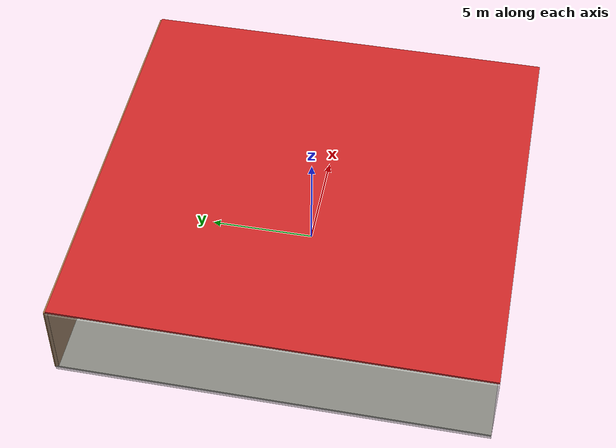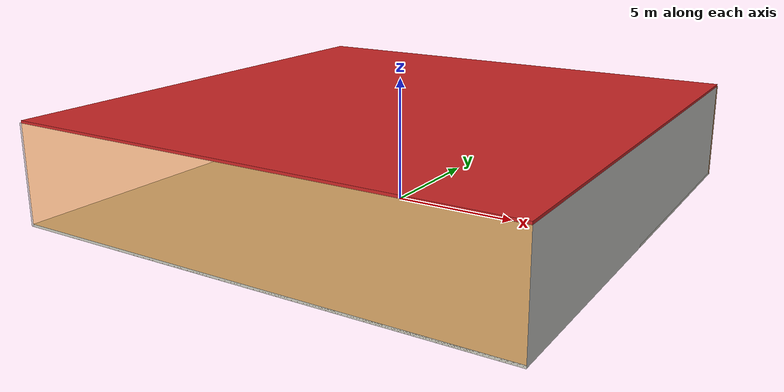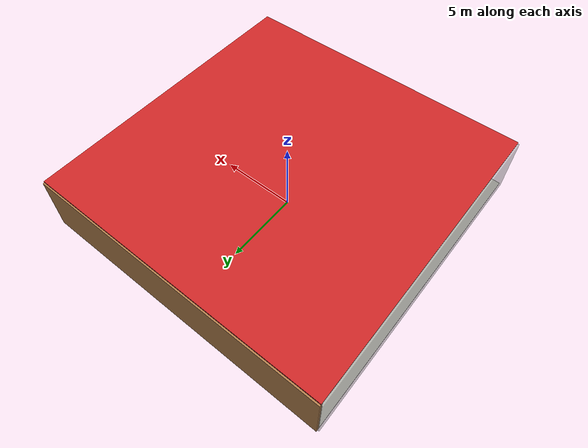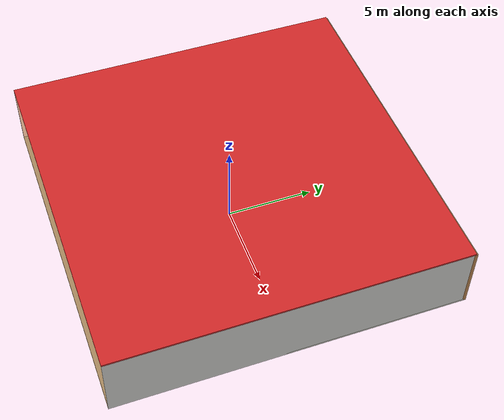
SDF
<sdf version="1.4">
 <world name="default">
  <physics type="ode">
   <max_step_size>0.001</max_step_size>
   <real_time_factor>1</real_time_factor>
   <real_time_update_rate>1000</real_time_update_rate>
   <gravity>0 0 -9.8</gravity>
  </physics>
  <scene><ambient>0.4 0.4 0.4 1</ambient><background>0.7 0.7 0.7 1</background><shadows>1</shadows></scene>
  <model name="Surrounding">
   <static>1</static>
   <link name="Ceiling">
    <collision name="Ceiling_Collision"><geometry><box><size>20 20 0.1</size></box></geometry></collision>
    <visual name="Ceiling_Visual">
     <geometry><box><size>20 20 0.1</size></box></geometry>
     <material>
      <script><uri>file://media/materials/scripts/gazebo.material</uri><name>Gazebo/Red</name></script>
     </material>
    </visual>
    <pose>0 0 4.05 0 0 0</pose>
   </link>
   <link name="Wall_South">
    <collision name="Wall_South_Collision">
     <geometry><box><size>20 0 4</size></box></geometry>
     <pose>0 0 2 0 -0 0</pose>
    </collision>
    <visual name="Wall_South_Visual">
     <pose>0 0 2 0 -0 0</pose>
     <geometry><box><size>20 0 4</size></box></geometry>
     <material>
      <script>
       <uri>file://media/materials/scripts/gazebo.material</uri>
       <name>Gazebo/OrangeTransparent</name>
      </script>
     </material>
    </visual>
    <velocity_decay><linear>0</linear><angular>0</angular></velocity_decay>
    <pose>0 -10 0 0 -0 0</pose>
   </link>
   <link name="Wall_East">
    <collision name="Wall_21_Collision">
     <geometry><box><size>20 0 4</size></box></geometry>
     <pose>0 0 2 0 -0 0</pose>
    </collision>
    <visual name="Wall_21_Visual">
     <pose>0 0 2 0 -0 0</pose>
     <geometry><box><size>20 0 4</size></box></geometry>
     <material>
      <script><uri>file://media/materials/scripts/gazebo.material</uri><name>Gazebo/CeilingTiled</name></script>
     </material>
    </visual>
    <velocity_decay><linear>0</linear><angular>0</angular></velocity_decay>
    <pose>10 0 0 0 -0 1.5708</pose>
   </link>
   <link name="Wall_North">
    <collision name="Wall_22_Collision">
     <geometry><box><size>20 0.2 4</size></box></geometry>
     <pose>0 0 2 0 -0 0</pose>
    </collision>
    <visual name="Wall_22_Visual">
     <pose>0 0 2 0 -0 0</pose>
     <geometry><box><size>20 0.2 4</size></box></geometry>
     <material>
      <script><uri>file://media/materials/scripts/gazebo.material</uri><name>Gazebo/WoodFloor</name></script>
     </material>
    </visual>
    <velocity_decay><linear>0</linear><angular>0</angular></velocity_decay>
    <pose>0 10 0 0 -0 0</pose>
   </link>
   <link name="Wall_West">
    <collision name="Wall_23_Collision">
     <geometry><box><size>20 0.2 4</size></box></geometry>
     <pose>0 0 2 0 -0 0</pose>
    </collision>
    <visual name="Wall_23_Visual">
     <pose>0 0 2 0 -0 0</pose>
     <geometry><box><size>20 0.2 4</size></box></geometry>
     <material>
      <script><uri>file://media/materials/scripts/gazebo.material</uri><name>Gazebo/GreyTransparent</name></script>
     </material>
    </visual>
    <velocity_decay><linear>0</linear><angular>0</angular></velocity_decay>
    <pose>-10 0 0 0 0 -1.5708</pose>
   </link>
   <link name="Ground_link">
    <collision name="collision">
     <pose>0 0 .05 0 -0 0</pose>
     <geometry><box><size>20 20 0.1</size></box></geometry>
    </collision>
    <visual name="visual">
     <pose>0 0 .05 0 -0 0</pose>
     <geometry><box><size>20 20 0.1</size></box></geometry>
     <material>
      <script><uri>file://media/materials/scripts/gazebo.material</uri><name>Gazebo/PaintedWall</name></script>
     </material>
    </visual>
   </link>
   <static>1</static>
  </model>
  <spherical_coordinates>
   <surface_model>EARTH_WGS84</surface_model>
   <latitude_deg>0</latitude_deg>
   <longitude_deg>0</longitude_deg>
   <elevation>0</elevation>
   <heading_deg>0</heading_deg>
  </spherical_coordinates>
  <light name="lightball_0" type="diffuse">
   <diffuse>0.8 0.8 0.8 1</diffuse>
   <specular>0.2 0.2 0.2 1</specular>
   <attenuation>
    <range>100</range>
    <constant>0.7</constant>
    <linear>0.01</linear>
    <quadratic>0.001</quadratic>
   </attenuation>
   <direction>-0.5 0.1 -0.9</direction>
   <pose>-0.928702332087 -0.66718600412 0.785485216547 0 0 0</pose>
  </light>
  <light name="lightball_1" type="diffuse">
   <diffuse>0.8 0.8 0.8 1</diffuse>
   <specular>0.2 0.2 0.2 1</specular>
   <attenuation>
    <range>100</range>
    <constant>0.7</constant>
    <linear>0.01</linear>
    <quadratic>0.001</quadratic>
   </attenuation>
   <direction>-0.5 0.1 -0.9</direction>
   <pose>1.39361688313 -3.70500204905 3.09729109374 0 0 0</pose>
  </light>
  <light name="lightball_2" type="diffuse">
   <diffuse>0.8 0.8 0.8 1</diffuse>
   <specular>0.2 0.2 0.2 1</specular>
   <attenuation>
    <range>100</range>
    <constant>0.7</constant>
    <linear>0.01</linear>
    <quadratic>0.001</quadratic>
   </attenuation>
   <direction>-0.5 0.1 -0.9</direction>
   <pose>-6.57329357052 4.55098685815 1.1972615632 0 0 0</pose>
  </light>
  <light name="lightball_3" type="diffuse">
   <diffuse>0.8 0.8 0.8 1</diffuse>
   <specular>0.2 0.2 0.2 1</specular>
   <attenuation>
    <range>100</range>
    <constant>0.7</constant>
    <linear>0.01</linear>
    <quadratic>0.001</quadratic>
   </attenuation>
   <direction>-0.5 0.1 -0.9</direction>
   <pose>-9.1883188322 4.45510883386 1.72194706751 0 0 0</pose>
  </light>
  <light name="lightball_4" type="diffuse">
   <diffuse>0.8 0.8 0.8 1</diffuse>
   <specular>0.2 0.2 0.2 1</specular>
   <attenuation>
    <range>100</range>
    <constant>0.7</constant>
    <linear>0.01</linear>
    <quadratic>0.001</quadratic>
   </attenuation>
   <direction>-0.5 0.1 -0.9</direction>
   <pose>8.69609169772 3.59995492112 3.3059924493 0 0 0</pose>
  </light>
  <include>
   <uri>model://construction_cone</uri>
   <pose>-4.98998172052 1.60916199249 0 0 0 0.20294725129</pose>
  </include>
  <include>
   <uri>model://construction_cone</uri>
   <pose>2.17372206532 3.80856459879 0 0 0 2.47255660704</pose>
  </include>
  <include>
   <uri>model://robocup_3Dsim_goal</uri>
   <pose>2.25374579098 7.82804666396 0 0 0 0.190071276643</pose>
  </include>
  <include>
   <uri>model://construction_cone</uri>
   <pose>7.78853756178 -0.896676658677 0 0 0 0.979186125098</pose>
  </include>
 </world>
</sdf>

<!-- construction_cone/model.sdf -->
<sdf version="1.5">
  <model name="Construction Cone">
    <link name="link">
      <collision name="collision">
        <geometry>
          <mesh>
            <scale>10 10 10</scale>
            <uri>file://isr-testbed/construction_cone/meshes/construction_cone.dae</uri>
          </mesh>
        </geometry>
      </collision>
      <visual name="visual">
        <geometry>
          <mesh>
            <scale>10 10 10</scale>
            <uri>file://isr-testbed/construction_cone/meshes/construction_cone.dae</uri>
          </mesh>
        </geometry>
      </visual>
    </link>
  </model>
</sdf>

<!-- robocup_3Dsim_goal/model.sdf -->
<sdf version="1.5">
  <model name="robocup_3d_goal">
    <static>true</static>
    <link name="left_post">
      <pose>0 1.05 0.45 0 0 0</pose>
      <collision name="collision">
        <geometry>
          <cylinder>
            <radius>0.05</radius>
            <length>0.9</length>
          </cylinder>
        </geometry>
      </collision>
      <visual name="visual">
        <geometry>
          <cylinder>
            <radius>0.05</radius>
            <length>0.9</length>
          </cylinder>
        </geometry>
        <material>
          <script>
            <uri>file://media/materials/scripts/gazebo.material</uri>
            <name>Gazebo/ZincYellow</name>
          </script>
        </material>
      </visual>
    </link>
    <link name="left_support_horiz_lower">
      <pose>0.30 1.05 0.01 0 0 0</pose>
      <collision name="collision">
        <geometry>
          <box>
            <size>0.50 0.02 0.02</size>
          </box>
        </geometry>
      </collision>
      <visual name="visual">
        <geometry>
          <box>
            <size>0.50 0.02 0.02</size>
          </box>
        </geometry>
        <material>
          <script>
            <uri>file://media/materials/scripts/gazebo.material</uri>
            <name>Gazebo/White</name>
          </script>
        </material>
      </visual>
    </link>
    <link name="left_support_horiz_upper">
      <pose>0.30 1.05 0.79 0 0 0</pose>
      <collision name="collision">
        <geometry>
          <box>
            <size>0.50 0.02 0.02</size>
          </box>
        </geometry>
      </collision>
      <visual name="visual">
        <geometry>
          <box>
            <size>0.50 0.02 0.02</size>
          </box>
        </geometry>
        <material>
          <script>
            <uri>file://media/materials/scripts/gazebo.material</uri>
            <name>Gazebo/White</name>
          </script>
        </material>
      </visual>
    </link>
    <link name="left_support_vertical">
      <pose>0.56 1.05 0.4 0 1.5708 0</pose>
      <collision name="collision">
        <geometry>
          <box>
            <size>0.80 0.02 0.02</size>
          </box>
        </geometry>
      </collision>
      <visual name="visual">
        <geometry>
          <box>
            <size>0.80 0.02 0.02</size>
          </box>
        </geometry>
        <material>
          <script>
            <uri>file://media/materials/scripts/gazebo.material</uri>
            <name>Gazebo/White</name>
          </script>
        </material>
      </visual>
    </link>
    <link name="right_support_horiz_lower">
      <pose>0.30 -1.05 0.01 0 0 0</pose>
      <collision name="collision">
        <geometry>
          <box>
            <size>0.50 0.02 0.02</size>
          </box>
        </geometry>
      </collision>
      <visual name="visual">
        <geometry>
          <box>
            <size>0.50 0.02 0.02</size>
          </box>
        </geometry>
        <material>
          <script>
            <uri>file://media/materials/scripts/gazebo.material</uri>
            <name>Gazebo/White</name>
          </script>
        </material>
      </visual>
    </link>
    <link name="right_support_horiz_upper">
      <pose>0.30 -1.05 0.79 0 0 0</pose>
      <collision name="collision">
        <geometry>
          <box>
            <size>0.50 0.02 0.02</size>
          </box>
        </geometry>
      </collision>
      <visual name="visual">
        <geometry>
          <box>
            <size>0.50 0.02 0.02</size>
          </box>
        </geometry>
        <material>
          <script>
            <uri>file://media/materials/scripts/gazebo.material</uri>
            <name>Gazebo/White</name>
          </script>
        </material>
      </visual>
    </link>
    <link name="right_support_vertical">
      <pose>0.56 -1.05 0.4 0 1.5708 0</pose>
      <collision name="collision">
        <geometry>
          <box>
            <size>0.80 0.02 0.02</size>
          </box>
        </geometry>
      </collision>
      <visual name="visual">
        <geometry>
          <box>
            <size>0.80 0.02 0.02</size>
          </box>
        </geometry>
        <material>
          <script>
            <uri>file://media/materials/scripts/gazebo.material</uri>
            <name>Gazebo/White</name>
          </script>
        </material>
      </visual>
    </link>
    <link name="center_support_horiz_lower">
      <pose>0.56 0 0.01 0 1.5708 0</pose>
      <collision name="collision">
        <geometry>
          <box>
            <size>0.02 2.08 0.02</size>
          </box>
        </geometry>
      </collision>
      <visual name="visual">
        <geometry>
          <box>
            <size>0.02 2.08 0.02</size>
          </box>
        </geometry>
        <material>
          <script>
            <uri>file://media/materials/scripts/gazebo.material</uri>
            <name>Gazebo/White</name>
          </script>
        </material>
      </visual>
    </link>
    <link name="center_support_horiz_upper">
      <pose>0.56 0 0.79 0 1.5708 0</pose>
      <collision name="collision">
        <geometry>
          <box>
            <size>0.02 2.08 0.02</size>
          </box>
        </geometry>
      </collision>
      <visual name="visual">
        <geometry>
          <box>
            <size>0.02 2.08 0.02</size>
          </box>
        </geometry>
        <material>
          <script>
            <uri>file://media/materials/scripts/gazebo.material</uri>
            <name>Gazebo/White</name>
          </script>
        </material>
      </visual>
    </link>
    <link name="right_post">
      <pose>0 -1.05 0.45 0 0 0</pose>
      <collision name="collision">
        <geometry>
          <cylinder>
            <radius>0.05</radius>
            <length>0.9</length>
          </cylinder>
        </geometry>
      </collision>
      <visual name="visual">
        <geometry>
          <cylinder>
            <radius>0.05</radius>
            <length>0.9</length>
          </cylinder>
        </geometry>
        <material>
          <script>
            <uri>file://media/materials/scripts/gazebo.material</uri>
            <name>Gazebo/ZincYellow</name>
          </script>
        </material>
      </visual>
    </link>
    <link name="crossbar">
      <pose>0 0 0.85 1.57 1.57 0</pose>
      <collision name="collision">
        <geometry>
          <cylinder>
            <radius>0.05</radius>
            <length>2.0</length>
          </cylinder>
        </geometry>
      </collision>
      <visual name="visual">
        <geometry>
          <cylinder>
            <radius>0.05</radius>
            <length>2.0</length>
          </cylinder>
        </geometry>
        <material>
          <script>
            <uri>file://media/materials/scripts/gazebo.material</uri>
            <name>Gazebo/ZincYellow</name>
          </script>
        </material>
      </visual>
    </link>
    <link name="center_net">
      <pose>0.56 0 0.40 0 0 0</pose>
      <collision name="collision">
        <geometry>
          <box>
            <size>0.01 2.1 0.80</size>
          </box>
        </geometry>
      </collision>
      <visual name="visual">
        <geometry>
          <box>
            <size>0.01 2.1 0.80</size>
          </box>
        </geometry>
        <material>
          <script>
            <uri>model://../model_source/models/robocup09_spl_field/materials/scripts/</uri>
            <uri>model://../model_source/models/robocup09_spl_field/materials/textures/</uri>
            <name>RoboCup/Net</name>
          </script>
        </material>
      </visual>
    </link>
    <link name="left_net">
      <pose>0.30 1.05 0.40 0 0 0</pose>
      <collision name="collision">
        <geometry>
          <box>
            <size>0.50 0.01 0.76</size>
          </box>
        </geometry>
      </collision>
      <visual name="visual">
        <geometry>
          <box>
            <size>0.50 0.01 0.76</size>
          </box>
        </geometry>
        <material>
          <script>
            <uri>model://../model_source/models/robocup09_spl_field/materials/scripts/</uri>
            <uri>model://../model_source/models/robocup09_spl_field/materials/textures/</uri>
            <name>RoboCup/Net</name>
          </script>
        </material>
      </visual>
    </link>
    <link name="right_net">
      <pose>0.30 -1.05 0.40 0 0 0</pose>
      <collision name="collision">
        <geometry>
          <box>
            <size>0.50 0.01 0.76</size>
          </box>
        </geometry>
      </collision>
      <visual name="visual">
        <geometry>
          <box>
            <size>0.50 0.01 0.76</size>
          </box>
        </geometry>
        <material>
          <script>
            <uri>model://../model_source/models/robocup09_spl_field/materials/scripts/</uri>
            <uri>model://../model_source/models/robocup09_spl_field/materials/textures/</uri>
            <name>RoboCup/Net</name>
          </script>
        </material>
      </visual>
    </link>
  </model>
</sdf>
